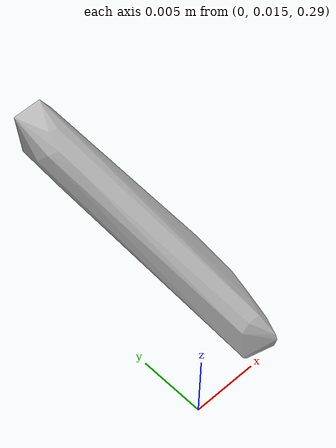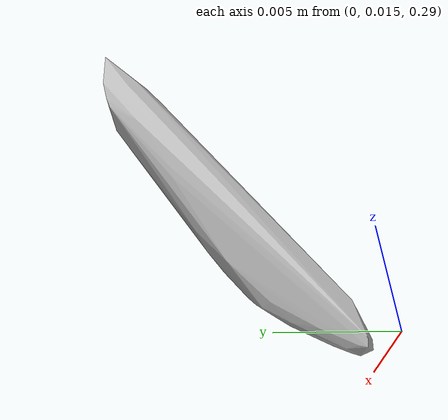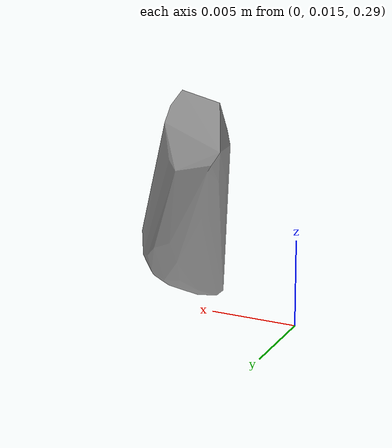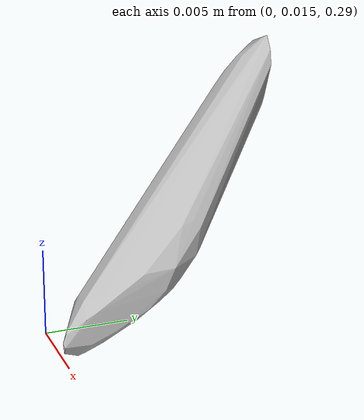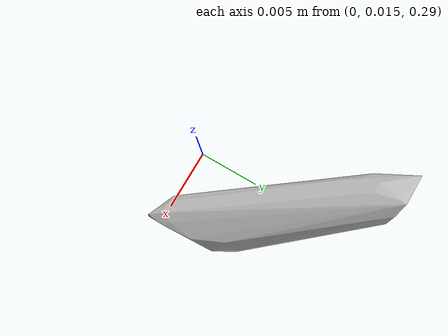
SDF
<?xml version="1.0"?>
<sdf version="1.7">
  <model name="vascular_partexport051">
    <link name="vascular_partexport051_body">
      <visual name="vascular_partexport051_visual">
        <geometry>
          <mesh>
            <uri>vascular_partexport051.obj</uri>
          </mesh>
        </geometry>
      </visual>
      <collision name="vascular_partexport051_collision">
        <geometry>
          <mesh>
            <uri>vascular_partexport051.obj</uri>
          </mesh>
        </geometry>
      </collision>
    </link>
    <frame name="vascular_partexport051_center">
      <pose relative_to="vascular_partexport051_body">0 0 0 0 0 0</pose>
    </frame>
  </model>
</sdf>
